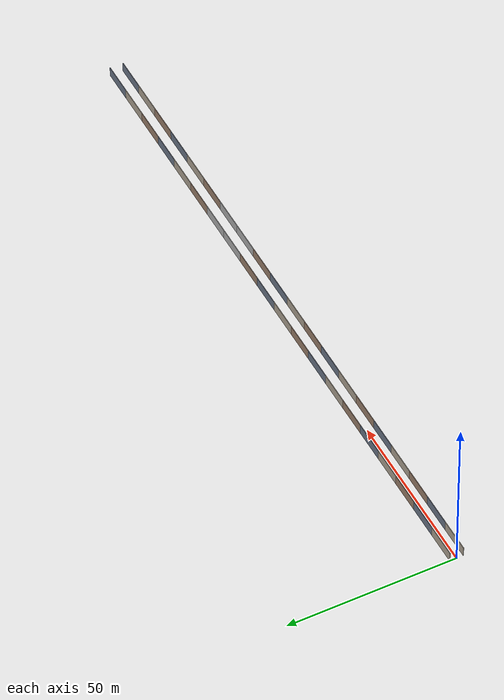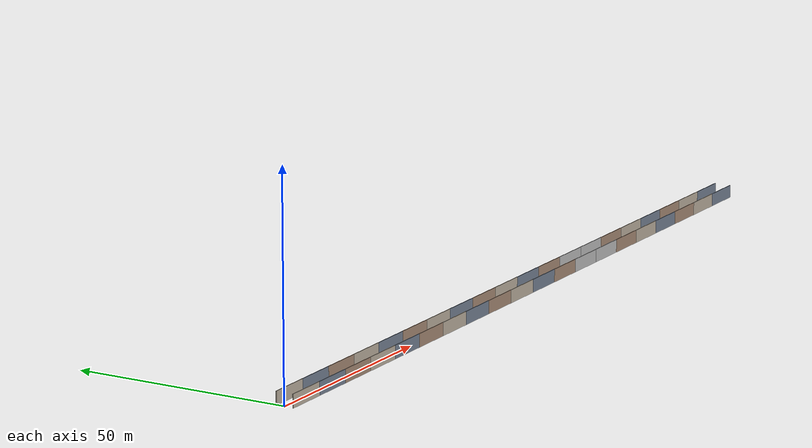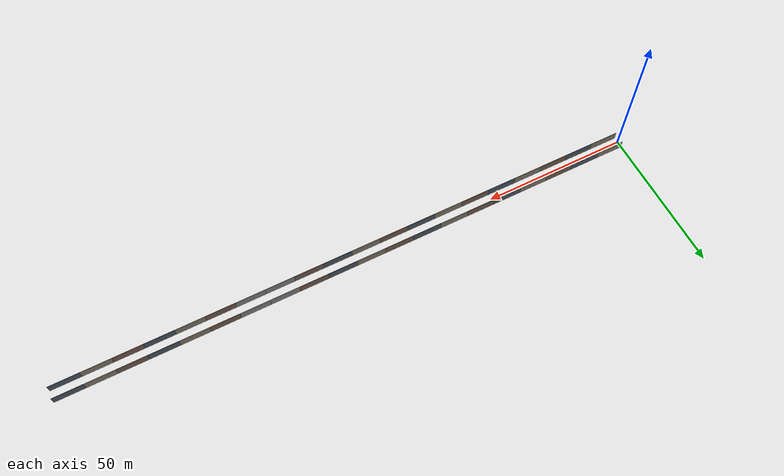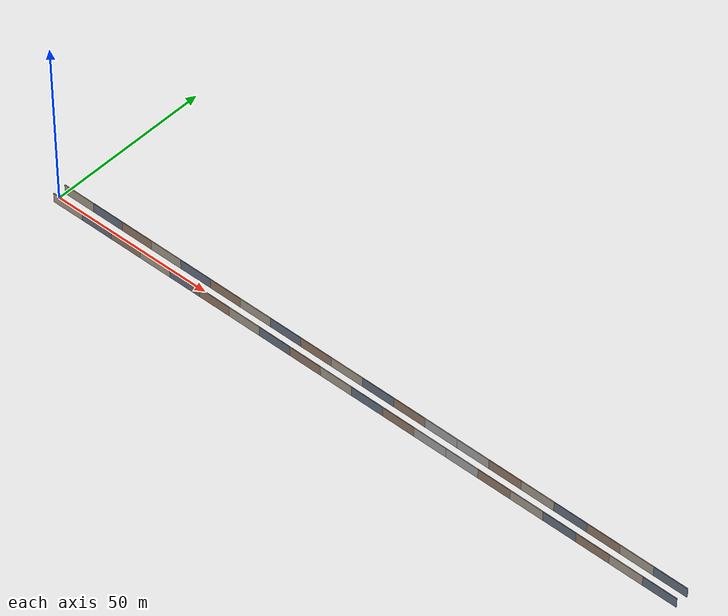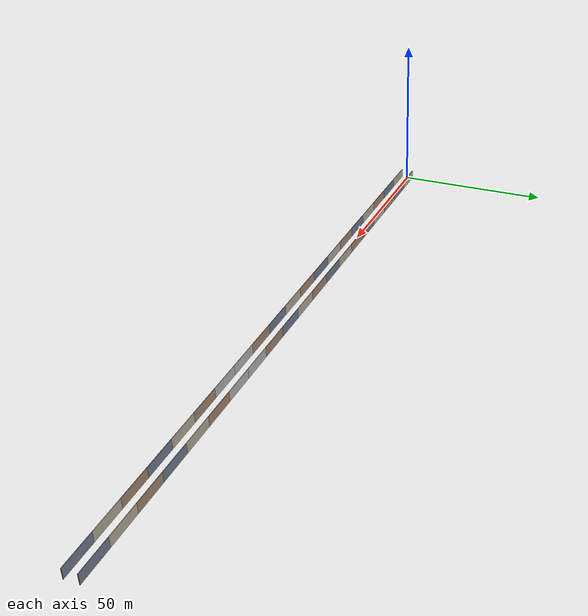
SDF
<?xml version="1.0" ?>
<sdf version="1.10">
  <model name="tunnel_walls">
    <static>true</static>
    <link name="link">
      <collision name="c_left">
        <pose>100 2 1.5 0 0 0</pose>
        <geometry><box><size>200 0.2 3</size></box></geometry>
      </collision>
      <collision name="c_right">
        <pose>100 -2 1.5 0 0 0</pose>
        <geometry><box><size>200 0.2 3</size></box></geometry>
      </collision>
      <visual name="wl_000">
        <pose>5 2 1.5 0 0 0</pose>
        <geometry><box><size>10 0.2 3</size></box></geometry>
        <material><ambient>0.62 0.58 0.52 1</ambient><diffuse>0.62 0.58 0.52 1</diffuse></material>
      </visual>
      <visual name="wl_010">
        <pose>15 2 1.5 0 0 0</pose>
        <geometry><box><size>10 0.2 3</size></box></geometry>
        <material><ambient>0.38 0.42 0.48 1</ambient><diffuse>0.38 0.42 0.48 1</diffuse></material>
      </visual>
      <visual name="wl_020">
        <pose>25 2 1.5 0 0 0</pose>
        <geometry><box><size>10 0.2 3</size></box></geometry>
        <material><ambient>0.55 0.45 0.38 1</ambient><diffuse>0.55 0.45 0.38 1</diffuse></material>
      </visual>
      <visual name="wl_030">
        <pose>35 2 1.5 0 0 0</pose>
        <geometry><box><size>10 0.2 3</size></box></geometry>
        <material><ambient>0.62 0.58 0.52 1</ambient><diffuse>0.62 0.58 0.52 1</diffuse></material>
      </visual>
      <visual name="wl_040">
        <pose>45 2 1.5 0 0 0</pose>
        <geometry><box><size>10 0.2 3</size></box></geometry>
        <material><ambient>0.38 0.42 0.48 1</ambient><diffuse>0.38 0.42 0.48 1</diffuse></material>
      </visual>
      <visual name="wl_050">
        <pose>55 2 1.5 0 0 0</pose>
        <geometry><box><size>10 0.2 3</size></box></geometry>
        <material><ambient>0.55 0.45 0.38 1</ambient><diffuse>0.55 0.45 0.38 1</diffuse></material>
      </visual>
      <visual name="wl_060">
        <pose>65 2 1.5 0 0 0</pose>
        <geometry><box><size>10 0.2 3</size></box></geometry>
        <material><ambient>0.62 0.58 0.52 1</ambient><diffuse>0.62 0.58 0.52 1</diffuse></material>
      </visual>
      <visual name="wl_070">
        <pose>75 2 1.5 0 0 0</pose>
        <geometry><box><size>10 0.2 3</size></box></geometry>
        <material><ambient>0.38 0.42 0.48 1</ambient><diffuse>0.38 0.42 0.48 1</diffuse></material>
      </visual>
      <visual name="wl_080">
        <pose>85 2 1.5 0 0 0</pose>
        <geometry><box><size>10 0.2 3</size></box></geometry>
        <material><ambient>0.55 0.45 0.38 1</ambient><diffuse>0.55 0.45 0.38 1</diffuse></material>
      </visual>
      <visual name="wl_090">
        <pose>95 2 1.5 0 0 0</pose>
        <geometry><box><size>10 0.2 3</size></box></geometry>
        <material><ambient>0.62 0.58 0.52 1</ambient><diffuse>0.62 0.58 0.52 1</diffuse></material>
      </visual>
      <visual name="wl_100">
        <pose>105 2 1.5 0 0 0</pose>
        <geometry><box><size>10 0.2 3</size></box></geometry>
        <material><ambient>0.38 0.42 0.48 1</ambient><diffuse>0.38 0.42 0.48 1</diffuse></material>
      </visual>
      <visual name="wl_110">
        <pose>115 2 1.5 0 0 0</pose>
        <geometry><box><size>10 0.2 3</size></box></geometry>
        <material><ambient>0.55 0.45 0.38 1</ambient><diffuse>0.55 0.45 0.38 1</diffuse></material>
      </visual>
      <visual name="wl_120">
        <pose>125 2 1.5 0 0 0</pose>
        <geometry><box><size>10 0.2 3</size></box></geometry>
        <material><ambient>0.62 0.62 0.62 1</ambient><diffuse>0.62 0.62 0.62 1</diffuse></material>
      </visual>
      <visual name="wl_130">
        <pose>135 2 1.5 0 0 0</pose>
        <geometry><box><size>10 0.2 3</size></box></geometry>
        <material><ambient>0.62 0.62 0.62 1</ambient><diffuse>0.62 0.62 0.62 1</diffuse></material>
      </visual>
      <visual name="wl_140">
        <pose>145 2 1.5 0 0 0</pose>
        <geometry><box><size>10 0.2 3</size></box></geometry>
        <material><ambient>0.55 0.45 0.38 1</ambient><diffuse>0.55 0.45 0.38 1</diffuse></material>
      </visual>
      <visual name="wl_150">
        <pose>155 2 1.5 0 0 0</pose>
        <geometry><box><size>10 0.2 3</size></box></geometry>
        <material><ambient>0.62 0.58 0.52 1</ambient><diffuse>0.62 0.58 0.52 1</diffuse></material>
      </visual>
      <visual name="wl_160">
        <pose>165 2 1.5 0 0 0</pose>
        <geometry><box><size>10 0.2 3</size></box></geometry>
        <material><ambient>0.38 0.42 0.48 1</ambient><diffuse>0.38 0.42 0.48 1</diffuse></material>
      </visual>
      <visual name="wl_170">
        <pose>175 2 1.5 0 0 0</pose>
        <geometry><box><size>10 0.2 3</size></box></geometry>
        <material><ambient>0.55 0.45 0.38 1</ambient><diffuse>0.55 0.45 0.38 1</diffuse></material>
      </visual>
      <visual name="wl_180">
        <pose>185 2 1.5 0 0 0</pose>
        <geometry><box><size>10 0.2 3</size></box></geometry>
        <material><ambient>0.62 0.58 0.52 1</ambient><diffuse>0.62 0.58 0.52 1</diffuse></material>
      </visual>
      <visual name="wl_190">
        <pose>195 2 1.5 0 0 0</pose>
        <geometry><box><size>10 0.2 3</size></box></geometry>
        <material><ambient>0.38 0.42 0.48 1</ambient><diffuse>0.38 0.42 0.48 1</diffuse></material>
      </visual>
      <visual name="wr_000">
        <pose>5 -2 1.5 0 0 0</pose>
        <geometry><box><size>10 0.2 3</size></box></geometry>
        <material><ambient>0.62 0.58 0.52 1</ambient><diffuse>0.62 0.58 0.52 1</diffuse></material>
      </visual>
      <visual name="wr_010">
        <pose>15 -2 1.5 0 0 0</pose>
        <geometry><box><size>10 0.2 3</size></box></geometry>
        <material><ambient>0.38 0.42 0.48 1</ambient><diffuse>0.38 0.42 0.48 1</diffuse></material>
      </visual>
      <visual name="wr_020">
        <pose>25 -2 1.5 0 0 0</pose>
        <geometry><box><size>10 0.2 3</size></box></geometry>
        <material><ambient>0.55 0.45 0.38 1</ambient><diffuse>0.55 0.45 0.38 1</diffuse></material>
      </visual>
      <visual name="wr_030">
        <pose>35 -2 1.5 0 0 0</pose>
        <geometry><box><size>10 0.2 3</size></box></geometry>
        <material><ambient>0.62 0.58 0.52 1</ambient><diffuse>0.62 0.58 0.52 1</diffuse></material>
      </visual>
      <visual name="wr_040">
        <pose>45 -2 1.5 0 0 0</pose>
        <geometry><box><size>10 0.2 3</size></box></geometry>
        <material><ambient>0.38 0.42 0.48 1</ambient><diffuse>0.38 0.42 0.48 1</diffuse></material>
      </visual>
      <visual name="wr_050">
        <pose>55 -2 1.5 0 0 0</pose>
        <geometry><box><size>10 0.2 3</size></box></geometry>
        <material><ambient>0.55 0.45 0.38 1</ambient><diffuse>0.55 0.45 0.38 1</diffuse></material>
      </visual>
      <visual name="wr_060">
        <pose>65 -2 1.5 0 0 0</pose>
        <geometry><box><size>10 0.2 3</size></box></geometry>
        <material><ambient>0.62 0.58 0.52 1</ambient><diffuse>0.62 0.58 0.52 1</diffuse></material>
      </visual>
      <visual name="wr_070">
        <pose>75 -2 1.5 0 0 0</pose>
        <geometry><box><size>10 0.2 3</size></box></geometry>
        <material><ambient>0.38 0.42 0.48 1</ambient><diffuse>0.38 0.42 0.48 1</diffuse></material>
      </visual>
      <visual name="wr_080">
        <pose>85 -2 1.5 0 0 0</pose>
        <geometry><box><size>10 0.2 3</size></box></geometry>
        <material><ambient>0.55 0.45 0.38 1</ambient><diffuse>0.55 0.45 0.38 1</diffuse></material>
      </visual>
      <visual name="wr_090">
        <pose>95 -2 1.5 0 0 0</pose>
        <geometry><box><size>10 0.2 3</size></box></geometry>
        <material><ambient>0.62 0.58 0.52 1</ambient><diffuse>0.62 0.58 0.52 1</diffuse></material>
      </visual>
      <visual name="wr_100">
        <pose>105 -2 1.5 0 0 0</pose>
        <geometry><box><size>10 0.2 3</size></box></geometry>
        <material><ambient>0.38 0.42 0.48 1</ambient><diffuse>0.38 0.42 0.48 1</diffuse></material>
      </visual>
      <visual name="wr_110">
        <pose>115 -2 1.5 0 0 0</pose>
        <geometry><box><size>10 0.2 3</size></box></geometry>
        <material><ambient>0.55 0.45 0.38 1</ambient><diffuse>0.55 0.45 0.38 1</diffuse></material>
      </visual>
      <visual name="wr_120">
        <pose>125 -2 1.5 0 0 0</pose>
        <geometry><box><size>10 0.2 3</size></box></geometry>
        <material><ambient>0.62 0.62 0.62 1</ambient><diffuse>0.62 0.62 0.62 1</diffuse></material>
      </visual>
      <visual name="wr_130">
        <pose>135 -2 1.5 0 0 0</pose>
        <geometry><box><size>10 0.2 3</size></box></geometry>
        <material><ambient>0.62 0.62 0.62 1</ambient><diffuse>0.62 0.62 0.62 1</diffuse></material>
      </visual>
      <visual name="wr_140">
        <pose>145 -2 1.5 0 0 0</pose>
        <geometry><box><size>10 0.2 3</size></box></geometry>
        <material><ambient>0.55 0.45 0.38 1</ambient><diffuse>0.55 0.45 0.38 1</diffuse></material>
      </visual>
      <visual name="wr_150">
        <pose>155 -2 1.5 0 0 0</pose>
        <geometry><box><size>10 0.2 3</size></box></geometry>
        <material><ambient>0.62 0.58 0.52 1</ambient><diffuse>0.62 0.58 0.52 1</diffuse></material>
      </visual>
      <visual name="wr_160">
        <pose>165 -2 1.5 0 0 0</pose>
        <geometry><box><size>10 0.2 3</size></box></geometry>
        <material><ambient>0.38 0.42 0.48 1</ambient><diffuse>0.38 0.42 0.48 1</diffuse></material>
      </visual>
      <visual name="wr_170">
        <pose>175 -2 1.5 0 0 0</pose>
        <geometry><box><size>10 0.2 3</size></box></geometry>
        <material><ambient>0.55 0.45 0.38 1</ambient><diffuse>0.55 0.45 0.38 1</diffuse></material>
      </visual>
      <visual name="wr_180">
        <pose>185 -2 1.5 0 0 0</pose>
        <geometry><box><size>10 0.2 3</size></box></geometry>
        <material><ambient>0.62 0.58 0.52 1</ambient><diffuse>0.62 0.58 0.52 1</diffuse></material>
      </visual>
      <visual name="wr_190">
        <pose>195 -2 1.5 0 0 0</pose>
        <geometry><box><size>10 0.2 3</size></box></geometry>
        <material><ambient>0.38 0.42 0.48 1</ambient><diffuse>0.38 0.42 0.48 1</diffuse></material>
      </visual>
    </link>
  </model>
</sdf>
